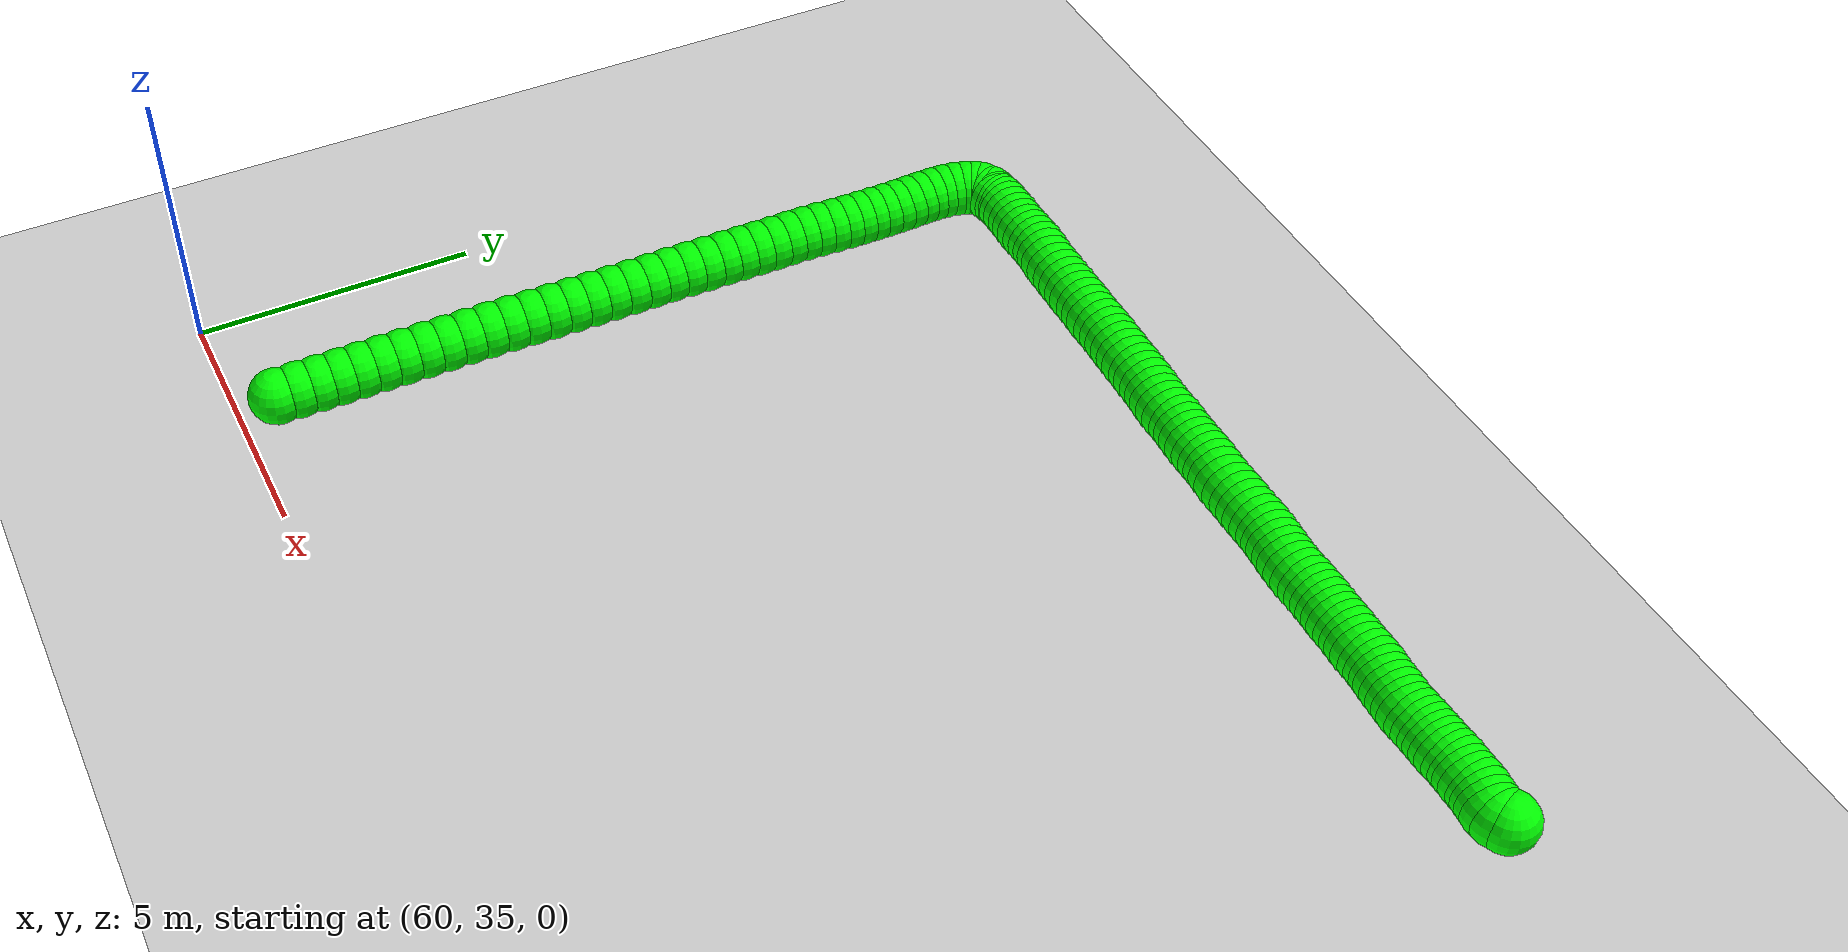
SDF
<sdf version="1.6">
 <world name="default">
  <include><uri>model://sun</uri></include>
  <include><uri>model://ground_plane</uri></include>
  <model name="marker_271">
   <static>true</static>
   <link name="link">
    <visual name="visual">
     <geometry><sphere><radius>0.5</radius></sphere></geometry>
     <material><ambient>0 1 0 1</ambient><diffuse>0 1 0 1</diffuse></material>
     <pose>79.09264280134074 49.093732123885516 0.5 0 0 0</pose>
    </visual>
   </link>
  </model>
  <model name="marker_272">
   <static>true</static>
   <link name="link">
    <visual name="visual">
     <geometry><sphere><radius>0.5</radius></sphere></geometry>
     <material><ambient>0 1 0 1</ambient><diffuse>0 1 0 1</diffuse></material>
     <pose>78.94742888653998 49.02631363896602 0.5 0 0 0</pose>
    </visual>
   </link>
  </model>
  <model name="marker_273">
   <static>true</static>
   <link name="link">
    <visual name="visual">
     <geometry><sphere><radius>0.5</radius></sphere></geometry>
     <material><ambient>0 1 0 1</ambient><diffuse>0 1 0 1</diffuse></material>
     <pose>78.79647075040774 49.01160415134155 0.5 0 0 0</pose>
    </visual>
   </link>
  </model>
  <model name="marker_274">
   <static>true</static>
   <link name="link">
    <visual name="visual">
     <geometry><sphere><radius>0.5</radius></sphere></geometry>
     <material><ambient>0 1 0 1</ambient><diffuse>0 1 0 1</diffuse></material>
     <pose>78.64206608152881 49.02794802647662 0.5 0 0 0</pose>
    </visual>
   </link>
  </model>
  <model name="marker_275">
   <static>true</static>
   <link name="link">
    <visual name="visual">
     <geometry><sphere><radius>0.5</radius></sphere></geometry>
     <material><ambient>0 1 0 1</ambient><diffuse>0 1 0 1</diffuse></material>
     <pose>78.48651256835747 49.04592628912231 0.5 0 0 0</pose>
    </visual>
   </link>
  </model>
  <model name="marker_276">
   <static>true</static>
   <link name="link">
    <visual name="visual">
     <geometry><sphere><radius>0.5</radius></sphere></geometry>
     <material><ambient>0 1 0 1</ambient><diffuse>0 1 0 1</diffuse></material>
     <pose>78.3380818896163 49.052872436055075 0.5 0 0 0</pose>
    </visual>
   </link>
  </model>
  <model name="marker_277">
   <static>true</static>
   <link name="link">
    <visual name="visual">
     <geometry><sphere><radius>0.5</radius></sphere></geometry>
     <material><ambient>0 1 0 1</ambient><diffuse>0 1 0 1</diffuse></material>
     <pose>78.1857451403854 49.04633488599814 0.5 0 0 0</pose>
    </visual>
   </link>
  </model>
  <model name="marker_278">
   <static>true</static>
   <link name="link">
    <visual name="visual">
     <geometry><sphere><radius>0.5</radius></sphere></geometry>
     <material><ambient>0 1 0 1</ambient><diffuse>0 1 0 1</diffuse></material>
     <pose>78.03547631083512 49.049603661026616 0.5 0 0 0</pose>
    </visual>
   </link>
  </model>
  <model name="marker_279">
   <static>true</static>
   <link name="link">
    <visual name="visual">
     <geometry><sphere><radius>0.5</radius></sphere></geometry>
     <material><ambient>0 1 0 1</ambient><diffuse>0 1 0 1</diffuse></material>
     <pose>77.88382886815353 49.05368962981401 0.5 0 0 0</pose>
    </visual>
   </link>
  </model>
  <model name="marker_280">
   <static>true</static>
   <link name="link">
    <visual name="visual">
     <geometry><sphere><radius>0.5</radius></sphere></geometry>
     <material><ambient>0 1 0 1</ambient><diffuse>0 1 0 1</diffuse></material>
     <pose>77.73930425990211 49.04347470785277 0.5 0 0 0</pose>
    </visual>
   </link>
  </model>
  <model name="marker_281">
   <static>true</static>
   <link name="link">
    <visual name="visual">
     <geometry><sphere><radius>0.5</radius></sphere></geometry>
     <material><ambient>0 1 0 1</ambient><diffuse>0 1 0 1</diffuse></material>
     <pose>77.59523918936114 49.03203399525677 0.5 0 0 0</pose>
    </visual>
   </link>
  </model>
  <model name="marker_282">
   <static>true</static>
   <link name="link">
    <visual name="visual">
     <geometry><sphere><radius>0.5</radius></sphere></geometry>
     <material><ambient>0 1 0 1</ambient><diffuse>0 1 0 1</diffuse></material>
     <pose>77.45186342540214 49.029991010870326 0.5 0 0 0</pose>
    </visual>
   </link>
  </model>
  <model name="marker_283">
   <static>true</static>
   <link name="link">
    <visual name="visual">
     <geometry><sphere><radius>0.5</radius></sphere></geometry>
     <material><ambient>0 1 0 1</ambient><diffuse>0 1 0 1</diffuse></material>
     <pose>77.30871743024937 49.027130832717695 0.5 0 0 0</pose>
    </visual>
   </link>
  </model>
  <model name="marker_284">
   <static>true</static>
   <link name="link">
    <visual name="visual">
     <geometry><sphere><radius>0.5</radius></sphere></geometry>
     <material><ambient>0 1 0 1</ambient><diffuse>0 1 0 1</diffuse></material>
     <pose>77.16603097283972 49.02467925144816 0.5 0 0 0</pose>
    </visual>
   </link>
  </model>
  <model name="marker_285">
   <static>true</static>
   <link name="link">
    <visual name="visual">
     <geometry><sphere><radius>0.5</radius></sphere></geometry>
     <material><ambient>0 1 0 1</ambient><diffuse>0 1 0 1</diffuse></material>
     <pose>77.01668121867768 49.015281523245854 0.5 0 0 0</pose>
    </visual>
   </link>
  </model>
  <model name="marker_286">
   <static>true</static>
   <link name="link">
    <visual name="visual">
     <geometry><sphere><radius>0.5</radius></sphere></geometry>
     <material><ambient>0 1 0 1</ambient><diffuse>0 1 0 1</diffuse></material>
     <pose>76.86641238912739 49.00792677943724 0.5 0 0 0</pose>
    </visual>
   </link>
  </model>
  <model name="marker_287">
   <static>true</static>
   <link name="link">
    <visual name="visual">
     <geometry><sphere><radius>0.5</radius></sphere></geometry>
     <material><ambient>0 1 0 1</ambient><diffuse>0 1 0 1</diffuse></material>
     <pose>76.71062910711717 48.99975484186971 0.5 0 0 0</pose>
    </visual>
   </link>
  </model>
  <model name="marker_288">
   <static>true</static>
   <link name="link">
    <visual name="visual">
     <geometry><sphere><radius>0.5</radius></sphere></geometry>
     <material><ambient>0 1 0 1</ambient><diffuse>0 1 0 1</diffuse></material>
     <pose>76.55530536278472 49.00751818256141 0.5 0 0 0</pose>
    </visual>
   </link>
  </model>
  <model name="marker_289">
   <static>true</static>
   <link name="link">
    <visual name="visual">
     <geometry><sphere><radius>0.5</radius></sphere></geometry>
     <material><ambient>0 1 0 1</ambient><diffuse>0 1 0 1</diffuse></material>
     <pose>76.39722439225494 49.015690120128944 0.5 0 0 0</pose>
    </visual>
   </link>
  </model>
  <model name="marker_290">
   <static>true</static>
   <link name="link">
    <visual name="visual">
     <geometry><sphere><radius>0.5</radius></sphere></geometry>
     <material><ambient>0 1 0 1</ambient><diffuse>0 1 0 1</diffuse></material>
     <pose>76.23408850694298 49.02427065457232 0.5 0 0 0</pose>
    </visual>
   </link>
  </model>
  <model name="marker_291">
   <static>true</static>
   <link name="link">
    <visual name="visual">
     <geometry><sphere><radius>0.5</radius></sphere></geometry>
     <material><ambient>0 1 0 1</ambient><diffuse>0 1 0 1</diffuse></material>
     <pose>76.06888470198304 49.0348941734094 0.5 0 0 0</pose>
    </visual>
   </link>
  </model>
  <model name="marker_292">
   <static>true</static>
   <link name="link">
    <visual name="visual">
     <geometry><sphere><radius>0.5</radius></sphere></geometry>
     <material><ambient>0 1 0 1</ambient><diffuse>0 1 0 1</diffuse></material>
     <pose>75.90689766096351 49.05164664542031 0.5 0 0 0</pose>
    </visual>
   </link>
  </model>
  <model name="marker_293">
   <static>true</static>
   <link name="link">
    <visual name="visual">
     <geometry><sphere><radius>0.5</radius></sphere></geometry>
     <material><ambient>0 1 0 1</ambient><diffuse>0 1 0 1</diffuse></material>
     <pose>75.74123431826048 49.05777559859415 0.5 0 0 0</pose>
    </visual>
   </link>
  </model>
  <model name="marker_294">
   <static>true</static>
   <link name="link">
    <visual name="visual">
     <geometry><sphere><radius>0.5</radius></sphere></geometry>
     <material><ambient>0 1 0 1</ambient><diffuse>0 1 0 1</diffuse></material>
     <pose>75.57465190016921 49.056549807959385 0.5 0 0 0</pose>
    </visual>
   </link>
  </model>
  <model name="marker_295">
   <static>true</static>
   <link name="link">
    <visual name="visual">
     <geometry><sphere><radius>0.5</radius></sphere></geometry>
     <material><ambient>0 1 0 1</ambient><diffuse>0 1 0 1</diffuse></material>
     <pose>75.40783971323906 49.05123804854448 0.5 0 0 0</pose>
    </visual>
   </link>
  </model>
  <model name="marker_296">
   <static>true</static>
   <link name="link">
    <visual name="visual">
     <geometry><sphere><radius>0.5</radius></sphere></geometry>
     <material><ambient>0 1 0 1</ambient><diffuse>0 1 0 1</diffuse></material>
     <pose>75.24010845088802 49.05859279235308 0.5 0 0 0</pose>
    </visual>
   </link>
  </model>
  <model name="marker_297">
   <static>true</static>
   <link name="link">
    <visual name="visual">
     <geometry><sphere><radius>0.5</radius></sphere></geometry>
     <material><ambient>0 1 0 1</ambient><diffuse>0 1 0 1</diffuse></material>
     <pose>75.07007950001746 49.06717332679646 0.5 0 0 0</pose>
    </visual>
   </link>
  </model>
  <model name="marker_298">
   <static>true</static>
   <link name="link">
    <visual name="visual">
     <geometry><sphere><radius>0.5</radius></sphere></geometry>
     <material><ambient>0 1 0 1</ambient><diffuse>0 1 0 1</diffuse></material>
     <pose>74.90418638847552 49.06676472992062 0.5 0 0 0</pose>
    </visual>
   </link>
  </model>
  <model name="marker_299">
   <static>true</static>
   <link name="link">
    <visual name="visual">
     <geometry><sphere><radius>0.5</radius></sphere></geometry>
     <material><ambient>0 1 0 1</ambient><diffuse>0 1 0 1</diffuse></material>
     <pose>74.73553605073626 49.06513034240276 0.5 0 0 0</pose>
    </visual>
   </link>
  </model>
  <model name="marker_300">
   <static>true</static>
   <link name="link">
    <visual name="visual">
     <geometry><sphere><radius>0.5</radius></sphere></geometry>
     <material><ambient>0 1 0 1</ambient><diffuse>0 1 0 1</diffuse></material>
     <pose>74.57285970313475 49.07044210182492 0.5 0 0 0</pose>
    </visual>
   </link>
  </model>
  <model name="marker_301">
   <static>true</static>
   <link name="link">
    <visual name="visual">
     <geometry><sphere><radius>0.5</radius></sphere></geometry>
     <material><ambient>0 1 0 1</ambient><diffuse>0 1 0 1</diffuse></material>
     <pose>74.40489867194482 49.076571054998766 0.5 0 0 0</pose>
    </visual>
   </link>
  </model>
  <model name="marker_302">
   <static>true</static>
   <link name="link">
    <visual name="visual">
     <geometry><sphere><radius>0.5</radius></sphere></geometry>
     <material><ambient>0 1 0 1</ambient><diffuse>0 1 0 1</diffuse></material>
     <pose>74.238775791564 49.076571054998766 0.5 0 0 0</pose>
    </visual>
   </link>
  </model>
  <model name="marker_303">
   <static>true</static>
   <link name="link">
    <visual name="visual">
     <geometry><sphere><radius>0.5</radius></sphere></geometry>
     <material><ambient>0 1 0 1</ambient><diffuse>0 1 0 1</diffuse></material>
     <pose>74.06851707182187 49.075345264363996 0.5 0 0 0</pose>
    </visual>
   </link>
  </model>
  <model name="marker_304">
   <static>true</static>
   <link name="link">
    <visual name="visual">
     <geometry><sphere><radius>0.5</radius></sphere></geometry>
     <material><ambient>0 1 0 1</ambient><diffuse>0 1 0 1</diffuse></material>
     <pose>73.89664997010954 49.071259295576596 0.5 0 0 0</pose>
    </visual>
   </link>
  </model>
  <model name="marker_305">
   <static>true</static>
   <link name="link">
    <visual name="visual">
     <geometry><sphere><radius>0.5</radius></sphere></geometry>
     <material><ambient>0 1 0 1</ambient><diffuse>0 1 0 1</diffuse></material>
     <pose>73.71972795368035 49.064721745526924 0.5 0 0 0</pose>
    </visual>
   </link>
  </model>
  <model name="marker_306">
   <static>true</static>
   <link name="link">
    <visual name="visual">
     <geometry><sphere><radius>0.5</radius></sphere></geometry>
     <material><ambient>0 1 0 1</ambient><diffuse>0 1 0 1</diffuse></material>
     <pose>73.534993796239 49.06635613303752 0.5 0 0 0</pose>
    </visual>
   </link>
  </model>
  <model name="marker_307">
   <static>true</static>
   <link name="link">
    <visual name="visual">
     <geometry><sphere><radius>0.5</radius></sphere></geometry>
     <material><ambient>0 1 0 1</ambient><diffuse>0 1 0 1</diffuse></material>
     <pose>73.35186802076784 49.074119473729226 0.5 0 0 0</pose>
    </visual>
   </link>
  </model>
  <model name="marker_308">
   <static>true</static>
   <link name="link">
    <visual name="visual">
     <geometry><sphere><radius>0.5</radius></sphere></geometry>
     <material><ambient>0 1 0 1</ambient><diffuse>0 1 0 1</diffuse></material>
     <pose>73.1703506272669 49.09087194574015 0.5 0 0 0</pose>
    </visual>
   </link>
  </model>
  <model name="marker_309">
   <static>true</static>
   <link name="link">
    <visual name="visual">
     <geometry><sphere><radius>0.5</radius></sphere></geometry>
     <material><ambient>0 1 0 1</ambient><diffuse>0 1 0 1</diffuse></material>
     <pose>72.98722485179574 49.10394704584675 0.5 0 0 0</pose>
    </visual>
   </link>
  </model>
  <model name="marker_310">
   <static>true</static>
   <link name="link">
    <visual name="visual">
     <geometry><sphere><radius>0.5</radius></sphere></geometry>
     <material><ambient>0 1 0 1</ambient><diffuse>0 1 0 1</diffuse></material>
     <pose>72.80272046322594 49.117839339705036 0.5 0 0 0</pose>
    </visual>
   </link>
  </model>
  <model name="marker_311">
   <static>true</static>
   <link name="link">
    <visual name="visual">
     <geometry><sphere><radius>0.5</radius></sphere></geometry>
     <material><ambient>0 1 0 1</ambient><diffuse>0 1 0 1</diffuse></material>
     <pose>72.6195946877548 49.123151099127206 0.5 0 0 0</pose>
    </visual>
   </link>
  </model>
  <model name="marker_312">
   <static>true</static>
   <link name="link">
    <visual name="visual">
     <geometry><sphere><radius>0.5</radius></sphere></geometry>
     <material><ambient>0 1 0 1</ambient><diffuse>0 1 0 1</diffuse></material>
     <pose>72.43003538440281 49.11988232409873 0.5 0 0 0</pose>
    </visual>
   </link>
  </model>
  <model name="marker_313">
   <static>true</static>
   <link name="link">
    <visual name="visual">
     <geometry><sphere><radius>0.5</radius></sphere></geometry>
     <material><ambient>0 1 0 1</ambient><diffuse>0 1 0 1</diffuse></material>
     <pose>72.23794862369239 49.11661354907027 0.5 0 0 0</pose>
    </visual>
   </link>
  </model>
  <model name="marker_314">
   <static>true</static>
   <link name="link">
    <visual name="visual">
     <geometry><sphere><radius>0.5</radius></sphere></geometry>
     <material><ambient>0 1 0 1</ambient><diffuse>0 1 0 1</diffuse></material>
     <pose>72.04126648591024 49.11865653346397 0.5 0 0 0</pose>
    </visual>
   </link>
  </model>
  <model name="marker_315">
   <static>true</static>
   <link name="link">
    <visual name="visual">
     <geometry><sphere><radius>0.5</radius></sphere></geometry>
     <material><ambient>0 1 0 1</ambient><diffuse>0 1 0 1</diffuse></material>
     <pose>71.8374615136979 49.1174307428292 0.5 0 0 0</pose>
    </visual>
   </link>
  </model>
  <model name="marker_316">
   <static>true</static>
   <link name="link">
    <visual name="visual">
     <geometry><sphere><radius>0.5</radius></sphere></geometry>
     <material><ambient>0 1 0 1</ambient><diffuse>0 1 0 1</diffuse></material>
     <pose>71.63181839070913 49.11293617716596 0.5 0 0 0</pose>
    </visual>
   </link>
  </model>
  <model name="marker_317">
   <static>true</static>
   <link name="link">
    <visual name="visual">
     <geometry><sphere><radius>0.5</radius></sphere></geometry>
     <material><ambient>0 1 0 1</ambient><diffuse>0 1 0 1</diffuse></material>
     <pose>71.41974173980685 49.11334477404906 0.5 0 0 0</pose>
    </visual>
   </link>
  </model>
  <model name="marker_318">
   <static>true</static>
   <link name="link">
    <visual name="visual">
     <geometry><sphere><radius>0.5</radius></sphere></geometry>
     <material><ambient>0 1 0 1</ambient><diffuse>0 1 0 1</diffuse></material>
     <pose>71.21134139055545 49.124785486637805 0.5 0 0 0</pose>
    </visual>
   </link>
  </model>
  <model name="marker_319">
   <static>true</static>
   <link name="link">
    <visual name="visual">
     <geometry><sphere><radius>0.5</radius></sphere></geometry>
     <material><ambient>0 1 0 1</ambient><diffuse>0 1 0 1</diffuse></material>
     <pose>71.01396994622395 49.13581760235072 0.5 0 0 0</pose>
    </visual>
   </link>
  </model>
  <model name="marker_320">
   <static>true</static>
   <link name="link">
    <visual name="visual">
     <geometry><sphere><radius>0.5</radius></sphere></geometry>
     <material><ambient>0 1 0 1</ambient><diffuse>0 1 0 1</diffuse></material>
     <pose>70.8230320297733 49.13786058674442 0.5 0 0 0</pose>
    </visual>
   </link>
  </model>
  <model name="marker_321">
   <static>true</static>
   <link name="link">
    <visual name="visual">
     <geometry><sphere><radius>0.5</radius></sphere></geometry>
     <material><ambient>0 1 0 1</ambient><diffuse>0 1 0 1</diffuse></material>
     <pose>70.63531087726308 49.13459181171595 0.5 0 0 0</pose>
    </visual>
   </link>
  </model>
  <model name="marker_322">
   <static>true</static>
   <link name="link">
    <visual name="visual">
     <geometry><sphere><radius>0.5</radius></sphere></geometry>
     <material><ambient>0 1 0 1</ambient><diffuse>0 1 0 1</diffuse></material>
     <pose>70.44896833785151 49.13459181171595 0.5 0 0 0</pose>
    </visual>
   </link>
  </model>
  <model name="marker_323">
   <static>true</static>
   <link name="link">
    <visual name="visual">
     <geometry><sphere><radius>0.5</radius></sphere></geometry>
     <material><ambient>0 1 0 1</ambient><diffuse>0 1 0 1</diffuse></material>
     <pose>70.25504342629934 49.14194655553182 0.5 0 0 0</pose>
    </visual>
   </link>
  </model>
  <model name="marker_324">
   <static>true</static>
   <link name="link">
    <visual name="visual">
     <geometry><sphere><radius>0.5</radius></sphere></geometry>
     <material><ambient>0 1 0 1</ambient><diffuse>0 1 0 1</diffuse></material>
     <pose>70.06042920819783 49.15338726812056 0.5 0 0 0</pose>
    </visual>
   </link>
  </model>
  <model name="marker_325">
   <static>true</static>
   <link name="link">
    <visual name="visual">
     <geometry><sphere><radius>0.5</radius></sphere></geometry>
     <material><ambient>0 1 0 1</ambient><diffuse>0 1 0 1</diffuse></material>
     <pose>69.86765314093807 49.16033341505334 0.5 0 0 0</pose>
    </visual>
   </link>
  </model>
  <model name="marker_326">
   <static>true</static>
   <link name="link">
    <visual name="visual">
     <geometry><sphere><radius>0.5</radius></sphere></geometry>
     <material><ambient>0 1 0 1</ambient><diffuse>0 1 0 1</diffuse></material>
     <pose>69.67280915399768 49.155021655631174 0.5 0 0 0</pose>
    </visual>
   </link>
  </model>
  <model name="marker_327">
   <static>true</static>
   <link name="link">
    <visual name="visual">
     <geometry><sphere><radius>0.5</radius></sphere></geometry>
     <material><ambient>0 1 0 1</ambient><diffuse>0 1 0 1</diffuse></material>
     <pose>69.47589724737662 49.1595162212944 0.5 0 0 0</pose>
    </visual>
   </link>
  </model>
  <model name="marker_328">
   <static>true</static>
   <link name="link">
    <visual name="visual">
     <geometry><sphere><radius>0.5</radius></sphere></geometry>
     <material><ambient>0 1 0 1</ambient><diffuse>0 1 0 1</diffuse></material>
     <pose>69.28013418501534 49.17013974013148 0.5 0 0 0</pose>
    </visual>
   </link>
  </model>
  <model name="marker_329">
   <static>true</static>
   <link name="link">
    <visual name="visual">
     <geometry><sphere><radius>0.5</radius></sphere></geometry>
     <material><ambient>0 1 0 1</ambient><diffuse>0 1 0 1</diffuse></material>
     <pose>69.07586967509258 49.18689221214239 0.5 0 0 0</pose>
    </visual>
   </link>
  </model>
  <model name="marker_330">
   <static>true</static>
   <link name="link">
    <visual name="visual">
     <geometry><sphere><radius>0.5</radius></sphere></geometry>
     <material><ambient>0 1 0 1</ambient><diffuse>0 1 0 1</diffuse></material>
     <pose>68.87367308488311 49.198332924738395 0.5 0 0 0</pose>
    </visual>
   </link>
  </model>
  <model name="marker_331">
   <static>true</static>
   <link name="link">
    <visual name="visual">
     <geometry><sphere><radius>0.5</radius></sphere></geometry>
     <material><ambient>0 1 0 1</ambient><diffuse>0 1 0 1</diffuse></material>
     <pose>68.67193603235144 49.20364468415331 0.5 0 0 0</pose>
    </visual>
   </link>
  </model>
  <model name="marker_332">
   <static>true</static>
   <link name="link">
    <visual name="visual">
     <geometry><sphere><radius>0.5</radius></sphere></geometry>
     <material><ambient>0 1 0 1</ambient><diffuse>0 1 0 1</diffuse></material>
     <pose>68.46905013555997 49.21426820299038 0.5 0 0 0</pose>
    </visual>
   </link>
  </model>
  <model name="marker_333">
   <static>true</static>
   <link name="link">
    <visual name="visual">
     <geometry><sphere><radius>0.5</radius></sphere></geometry>
     <material><ambient>0 1 0 1</ambient><diffuse>0 1 0 1</diffuse></material>
     <pose>68.261109324019 49.21304241235561 0.5 0 0 0</pose>
    </visual>
   </link>
  </model>
  <model name="marker_334">
   <static>true</static>
   <link name="link">
    <visual name="visual">
     <geometry><sphere><radius>0.5</radius></sphere></geometry>
     <material><ambient>0 1 0 1</ambient><diffuse>0 1 0 1</diffuse></material>
     <pose>68.05316851247804 49.22284873743376 0.5 0 0 0</pose>
    </visual>
   </link>
  </model>
  <model name="marker_335">
   <static>true</static>
   <link name="link">
    <visual name="visual">
     <geometry><sphere><radius>0.5</radius></sphere></geometry>
     <material><ambient>0 1 0 1</ambient><diffuse>0 1 0 1</diffuse></material>
     <pose>67.84729562061771 49.228569093731764 0.5 0 0 0</pose>
    </visual>
   </link>
  </model>
  <model name="marker_336">
   <static>true</static>
   <link name="link">
    <visual name="visual">
     <geometry><sphere><radius>0.5</radius></sphere></geometry>
     <material><ambient>0 1 0 1</ambient><diffuse>0 1 0 1</diffuse></material>
     <pose>67.64050365333651 49.236741031299296 0.5 0 0 0</pose>
    </visual>
   </link>
  </model>
  <model name="marker_337">
   <static>true</static>
   <link name="link">
    <visual name="visual">
     <geometry><sphere><radius>0.5</radius></sphere></geometry>
     <material><ambient>0 1 0 1</ambient><diffuse>0 1 0 1</diffuse></material>
     <pose>67.42957584669401 49.2424613875973 0.5 0 0 0</pose>
    </visual>
   </link>
  </model>
  <model name="marker_338">
   <static>true</static>
   <link name="link">
    <visual name="visual">
     <geometry><sphere><radius>0.5</radius></sphere></geometry>
     <material><ambient>0 1 0 1</ambient><diffuse>0 1 0 1</diffuse></material>
     <pose>67.21726942695284 49.244504371983744 0.5 0 0 0</pose>
    </visual>
   </link>
  </model>
  <model name="marker_339">
   <static>true</static>
   <link name="link">
    <visual name="visual">
     <geometry><sphere><radius>0.5</radius></sphere></geometry>
     <material><ambient>0 1 0 1</ambient><diffuse>0 1 0 1</diffuse></material>
     <pose>67.00496300721169 49.24123559696253 0.5 0 0 0</pose>
    </visual>
   </link>
  </model>
  <model name="marker_340">
   <static>true</static>
   <link name="link">
    <visual name="visual">
     <geometry><sphere><radius>0.5</radius></sphere></geometry>
     <material><ambient>0 1 0 1</ambient><diffuse>0 1 0 1</diffuse></material>
     <pose>66.79357566289139 49.251859115799604 0.5 0 0 0</pose>
    </visual>
   </link>
  </model>
  <model name="marker_341">
   <static>true</static>
   <link name="link">
    <visual name="visual">
     <geometry><sphere><radius>0.5</radius></sphere></geometry>
     <material><ambient>0 1 0 1</ambient><diffuse>0 1 0 1</diffuse></material>
     <pose>66.58448600705799 49.25757947209035 0.5 0 0 0</pose>
    </visual>
   </link>
  </model>
  <model name="marker_342">
   <static>true</static>
   <link name="link">
    <visual name="visual">
     <geometry><sphere><radius>0.5</radius></sphere></geometry>
     <material><ambient>0 1 0 1</ambient><diffuse>0 1 0 1</diffuse></material>
     <pose>66.37585588896769 49.25553648770391 0.5 0 0 0</pose>
    </visual>
   </link>
  </model>
  <model name="marker_343">
   <static>true</static>
   <link name="link">
    <visual name="visual">
     <geometry><sphere><radius>0.5</radius></sphere></geometry>
     <material><ambient>0 1 0 1</ambient><diffuse>0 1 0 1</diffuse></material>
     <pose>66.1681448462656 49.26370842526419 0.5 0 0 0</pose>
    </visual>
   </link>
  </model>
  <model name="marker_344">
   <static>true</static>
   <link name="link">
    <visual name="visual">
     <geometry><sphere><radius>0.5</radius></sphere></geometry>
     <material><ambient>0 1 0 1</ambient><diffuse>0 1 0 1</diffuse></material>
     <pose>65.95721703965577 49.26656860341682 0.5 0 0 0</pose>
    </visual>
   </link>
  </model>
  <model name="marker_345">
   <static>true</static>
   <link name="link">
    <visual name="visual">
     <geometry><sphere><radius>0.5</radius></sphere></geometry>
     <material><ambient>0 1 0 1</ambient><diffuse>0 1 0 1</diffuse></material>
     <pose>65.74743807730569 49.27106316908006 0.5 0 0 0</pose>
    </visual>
   </link>
  </model>
  <model name="marker_346">
   <static>true</static>
   <link name="link">
    <visual name="visual">
     <geometry><sphere><radius>0.5</radius></sphere></geometry>
     <material><ambient>0 1 0 1</ambient><diffuse>0 1 0 1</diffuse></material>
     <pose>65.53076604936435 49.2751491378602 0.5 0 0 0</pose>
    </visual>
   </link>
  </model>
  <model name="marker_347">
   <static>true</static>
   <link name="link">
    <visual name="visual">
     <geometry><sphere><radius>0.5</radius></sphere></geometry>
     <material><ambient>0 1 0 1</ambient><diffuse>0 1 0 1</diffuse></material>
     <pose>65.3129451771632 49.285772656697276 0.5 0 0 0</pose>
    </visual>
   </link>
  </model>
  <model name="marker_348">
   <static>true</static>
   <link name="link">
    <visual name="visual">
     <geometry><sphere><radius>0.5</radius></sphere></geometry>
     <material><ambient>0 1 0 1</ambient><diffuse>0 1 0 1</diffuse></material>
     <pose>65.09857083774139 49.3078368881231 0.5 0 0 0</pose>
    </visual>
   </link>
  </model>
  <model name="marker_349">
   <static>true</static>
   <link name="link">
    <visual name="visual">
     <geometry><sphere><radius>0.5</radius></sphere></geometry>
     <material><ambient>0 1 0 1</ambient><diffuse>0 1 0 1</diffuse></material>
     <pose>64.89384679014084 49.31846040696017 0.5 0 0 0</pose>
    </visual>
   </link>
  </model>
  <model name="marker_350">
   <static>true</static>
   <link name="link">
    <visual name="visual">
     <geometry><sphere><radius>0.5</radius></sphere></geometry>
     <material><ambient>0 1 0 1</ambient><diffuse>0 1 0 1</diffuse></material>
     <pose>64.70451725562776 49.31641742257373 0.5 0 0 0</pose>
    </visual>
   </link>
  </model>
  <model name="marker_351">
   <static>true</static>
   <link name="link">
    <visual name="visual">
     <geometry><sphere><radius>0.5</radius></sphere></geometry>
     <material><ambient>0 1 0 1</ambient><diffuse>0 1 0 1</diffuse></material>
     <pose>64.52208078673858 49.309879872516795 0.5 0 0 0</pose>
    </visual>
   </link>
  </model>
  <model name="marker_352">
   <static>true</static>
   <link name="link">
    <visual name="visual">
     <geometry><sphere><radius>0.5</radius></sphere></geometry>
     <material><ambient>0 1 0 1</ambient><diffuse>0 1 0 1</diffuse></material>
     <pose>64.33987408665567 49.30579390373666 0.5 0 0 0</pose>
    </visual>
   </link>
  </model>
  <model name="marker_353">
   <static>true</static>
   <link name="link">
    <visual name="visual">
     <geometry><sphere><radius>0.5</radius></sphere></geometry>
     <material><ambient>0 1 0 1</ambient><diffuse>0 1 0 1</diffuse></material>
     <pose>64.1578971554443 49.31069706627573 0.5 0 0 0</pose>
    </visual>
   </link>
  </model>
  <model name="marker_354">
   <static>true</static>
   <link name="link">
    <visual name="visual">
     <geometry><sphere><radius>0.5</radius></sphere></geometry>
     <material><ambient>0 1 0 1</ambient><diffuse>0 1 0 1</diffuse></material>
     <pose>63.97201415374316 49.3176432132085 0.5 0 0 0</pose>
    </visual>
   </link>
  </model>
  <model name="marker_355">
   <static>true</static>
   <link name="link">
    <visual name="visual">
     <geometry><sphere><radius>0.5</radius></sphere></geometry>
     <material><ambient>0 1 0 1</ambient><diffuse>0 1 0 1</diffuse></material>
     <pose>63.778548779934084 49.316826019449564 0.5 0 0 0</pose>
    </visual>
   </link>
  </model>
  <model name="marker_356">
   <static>true</static>
   <link name="link">
    <visual name="visual">
     <geometry><sphere><radius>0.5</radius></sphere></geometry>
     <material><ambient>0 1 0 1</ambient><diffuse>0 1 0 1</diffuse></material>
     <pose>63.59611231101226 49.31600882569063 0.5 0 0 0</pose>
    </visual>
   </link>
  </model>
  <model name="marker_357">
   <static>true</static>
   <link name="link">
    <visual name="visual">
     <geometry><sphere><radius>0.5</radius></sphere></geometry>
     <material><ambient>0 1 0 1</ambient><diffuse>0 1 0 1</diffuse></material>
     <pose>63.446532788011325 49.30538530685356 0.5 0 0 0</pose>
    </visual>
   </link>
  </model>
  <model name="marker_358">
   <static>true</static>
   <link name="link">
    <visual name="visual">
     <geometry><sphere><radius>0.5</radius></sphere></geometry>
     <material><ambient>0 1 0 1</ambient><diffuse>0 1 0 1</diffuse></material>
     <pose>63.33900096504208 49.280460897275105 0.5 0 0 0</pose>
    </visual>
   </link>
  </model>
  <model name="marker_359">
   <static>true</static>
   <link name="link">
    <visual name="visual">
     <geometry><sphere><radius>0.5</radius></sphere></geometry>
     <material><ambient>0 1 0 1</ambient><diffuse>0 1 0 1</diffuse></material>
     <pose>63.26823215845081 49.26534281278205 0.5 0 0 0</pose>
    </visual>
   </link>
  </model>
  <model name="marker_360">
   <static>true</static>
   <link name="link">
    <visual name="visual">
     <geometry><sphere><radius>0.5</radius></sphere></geometry>
     <material><ambient>0 1 0 1</ambient><diffuse>0 1 0 1</diffuse></material>
     <pose>63.21998069940982 49.26493421589896 0.5 0 0 0</pose>
    </visual>
   </link>
  </model>
  <model name="marker_361">
   <static>true</static>
   <link name="link">
    <visual name="visual">
     <geometry><sphere><radius>0.5</radius></sphere></geometry>
     <material><ambient>0 1 0 1</ambient><diffuse>0 1 0 1</diffuse></material>
     <pose>63.15771334038004 49.263299828388355 0.5 0 0 0</pose>
    </visual>
   </link>
  </model>
  <model name="marker_362">
   <static>true</static>
   <link name="link">
    <visual name="visual">
     <geometry><sphere><radius>0.5</radius></sphere></geometry>
     <material><ambient>0 1 0 1</ambient><diffuse>0 1 0 1</diffuse></material>
     <pose>63.09268875512027 49.217945574894685 0.5 0 0 0</pose>
    </visual>
   </link>
  </model>
  <model name="marker_363">
   <static>true</static>
   <link name="link">
    <visual name="visual">
     <geometry><sphere><radius>0.5</radius></sphere></geometry>
     <material><ambient>0 1 0 1</ambient><diffuse>0 1 0 1</diffuse></material>
     <pose>62.99664537474874 49.17463430579471 0.5 0 0 0</pose>
    </visual>
   </link>
  </model>
  <model name="marker_364">
   <static>true</static>
   <link name="link">
    <visual name="visual">
     <geometry><sphere><radius>0.5</radius></sphere></geometry>
     <material><ambient>0 1 0 1</ambient><diffuse>0 1 0 1</diffuse></material>
     <pose>62.910022517359565 49.07452807060507 0.5 0 0 0</pose>
    </visual>
   </link>
  </model>
  <model name="marker_365">
   <static>true</static>
   <link name="link">
    <visual name="visual">
     <geometry><sphere><radius>0.5</radius></sphere></geometry>
     <material><ambient>0 1 0 1</ambient><diffuse>0 1 0 1</diffuse></material>
     <pose>62.835807177988976 48.92212143498897 0.5 0 0 0</pose>
    </visual>
   </link>
  </model>
  <model name="marker_366">
   <static>true</static>
   <link name="link">
    <visual name="visual">
     <geometry><sphere><radius>0.5</radius></sphere></geometry>
     <material><ambient>0 1 0 1</ambient><diffuse>0 1 0 1</diffuse></material>
     <pose>62.783190110747796 48.7251777396454 0.5 0 0 0</pose>
    </visual>
   </link>
  </model>
  <model name="marker_367">
   <static>true</static>
   <link name="link">
    <visual name="visual">
     <geometry><sphere><radius>0.5</radius></sphere></geometry>
     <material><ambient>0 1 0 1</ambient><diffuse>0 1 0 1</diffuse></material>
     <pose>62.75171177795824 48.50616981286149 0.5 0 0 0</pose>
    </visual>
   </link>
  </model>
  <model name="marker_368">
   <static>true</static>
   <link name="link">
    <visual name="visual">
     <geometry><sphere><radius>0.5</radius></sphere></geometry>
     <material><ambient>0 1 0 1</ambient><diffuse>0 1 0 1</diffuse></material>
     <pose>62.74366986810719 48.272452398460366 0.5 0 0 0</pose>
    </visual>
   </link>
  </model>
  <model name="marker_369">
   <static>true</static>
   <link name="link">
    <visual name="visual">
     <geometry><sphere><radius>0.5</radius></sphere></geometry>
     <material><ambient>0 1 0 1</ambient><diffuse>0 1 0 1</diffuse></material>
     <pose>62.74826524514627 48.02647707771157 0.5 0 0 0</pose>
    </visual>
   </link>
  </model>
  <model name="marker_370">
   <static>true</static>
   <link name="link">
    <visual name="visual">
     <geometry><sphere><radius>0.5</radius></sphere></geometry>
     <material><ambient>0 1 0 1</ambient><diffuse>0 1 0 1</diffuse></material>
     <pose>62.759064381227304 47.77968456321109 0.5 0 0 0</pose>
    </visual>
   </link>
  </model>
  <model name="marker_371">
   <static>true</static>
   <link name="link">
    <visual name="visual">
     <geometry><sphere><radius>0.5</radius></sphere></geometry>
     <material><ambient>0 1 0 1</ambient><diffuse>0 1 0 1</diffuse></material>
     <pose>62.7694039795979 47.523494320501044 0.5 0 0 0</pose>
    </visual>
   </link>
  </model>
  <model name="marker_372">
   <static>true</static>
   <link name="link">
    <visual name="visual">
     <geometry><sphere><radius>0.5</radius></sphere></geometry>
     <material><ambient>0 1 0 1</ambient><diffuse>0 1 0 1</diffuse></material>
     <pose>62.774229125508526 47.27261583721317 0.5 0 0 0</pose>
    </visual>
   </link>
  </model>
  <model name="marker_373">
   <static>true</static>
   <link name="link">
    <visual name="visual">
     <geometry><sphere><radius>0.5</radius></sphere></geometry>
     <material><ambient>0 1 0 1</ambient><diffuse>0 1 0 1</diffuse></material>
     <pose>62.77262074353832 47.01928577265576 0.5 0 0 0</pose>
    </visual>
   </link>
  </model>
  <model name="marker_374">
   <static>true</static>
   <link name="link">
    <visual name="visual">
     <geometry><sphere><radius>0.5</radius></sphere></geometry>
     <material><ambient>0 1 0 1</ambient><diffuse>0 1 0 1</diffuse></material>
     <pose>62.77055282385767 46.76350412682881 0.5 0 0 0</pose>
    </visual>
   </link>
  </model>
  <model name="marker_375">
   <static>true</static>
   <link name="link">
    <visual name="visual">
     <geometry><sphere><radius>0.5</radius></sphere></geometry>
     <material><ambient>0 1 0 1</ambient><diffuse>0 1 0 1</diffuse></material>
     <pose>62.766187215657474 46.4987333496754 0.5 0 0 0</pose>
    </visual>
   </link>
  </model>
  <model name="marker_376">
   <static>true</static>
   <link name="link">
    <visual name="visual">
     <geometry><sphere><radius>0.5</radius></sphere></geometry>
     <material><ambient>0 1 0 1</ambient><diffuse>0 1 0 1</diffuse></material>
     <pose>62.757226230418205 46.220887472422625 0.5 0 0 0</pose>
    </visual>
   </link>
  </model>
  <model name="marker_377">
   <static>true</static>
   <link name="link">
    <visual name="visual">
     <geometry><sphere><radius>0.5</radius></sphere></geometry>
     <material><ambient>0 1 0 1</ambient><diffuse>0 1 0 1</diffuse></material>
     <pose>62.738155415647235 45.9373212388646 0.5 0 0 0</pose>
    </visual>
   </link>
  </model>
  <model name="marker_378">
   <static>true</static>
   <link name="link">
    <visual name="visual">
     <geometry><sphere><radius>0.5</radius></sphere></geometry>
     <material><ambient>0 1 0 1</ambient><diffuse>0 1 0 1</diffuse></material>
     <pose>62.726207435306435 45.636185339543985 0.5 0 0 0</pose>
    </visual>
   </link>
  </model>
  <model name="marker_379">
   <static>true</static>
   <link name="link">
    <visual name="visual">
     <geometry><sphere><radius>0.5</radius></sphere></geometry>
     <material><ambient>0 1 0 1</ambient><diffuse>0 1 0 1</diffuse></material>
     <pose>62.72299067139866 45.3317806651949 0.5 0 0 0</pose>
    </visual>
   </link>
  </model>
  <model name="marker_380">
   <static>true</static>
   <link name="link">
    <visual name="visual">
     <geometry><sphere><radius>0.5</radius></sphere></geometry>
     <material><ambient>0 1 0 1</ambient><diffuse>0 1 0 1</diffuse></material>
     <pose>62.72965396811839 45.01307510010443 0.5 0 0 0</pose>
    </visual>
   </link>
  </model>
  <model name="marker_381">
   <static>true</static>
   <link name="link">
    <visual name="visual">
     <geometry><sphere><radius>0.5</radius></sphere></geometry>
     <material><ambient>0 1 0 1</ambient><diffuse>0 1 0 1</diffuse></material>
     <pose>62.72919443040795 44.689466372474904 0.5 0 0 0</pose>
    </visual>
   </link>
  </model>
  <model name="marker_382">
   <static>true</static>
   <link name="link">
    <visual name="visual">
     <geometry><sphere><radius>0.5</radius></sphere></geometry>
     <material><ambient>0 1 0 1</ambient><diffuse>0 1 0 1</diffuse></material>
     <pose>62.724139515658436 44.35891149791985 0.5 0 0 0</pose>
    </visual>
   </link>
  </model>
  <model name="marker_383">
   <static>true</static>
   <link name="link">
    <visual name="visual">
     <geometry><sphere><radius>0.5</radius></sphere></geometry>
     <material><ambient>0 1 0 1</ambient><diffuse>0 1 0 1</diffuse></material>
     <pose>62.718854832037366 44.02753942959861 0.5 0 0 0</pose>
    </visual>
   </link>
  </model>
  <model name="marker_384">
   <static>true</static>
   <link name="link">
    <visual name="visual">
     <geometry><sphere><radius>0.5</radius></sphere></geometry>
     <material><ambient>0 1 0 1</ambient><diffuse>0 1 0 1</diffuse></material>
     <pose>62.719544138586706 43.67573751736216 0.5 0 0 0</pose>
    </visual>
   </link>
  </model>
  <model name="marker_385">
   <static>true</static>
   <link name="link">
    <visual name="visual">
     <geometry><sphere><radius>0.5</radius></sphere></geometry>
     <material><ambient>0 1 0 1</ambient><diffuse>0 1 0 1</diffuse></material>
     <pose>62.714029686126736 43.32025823322866 0.5 0 0 0</pose>
    </visual>
   </link>
  </model>
  <model name="marker_386">
   <static>true</static>
   <link name="link">
    <visual name="visual">
     <geometry><sphere><radius>0.5</radius></sphere></geometry>
     <material><ambient>0 1 0 1</ambient><diffuse>0 1 0 1</diffuse></material>
     <pose>62.70874500253832 42.961918770942525 0.5 0 0 0</pose>
    </visual>
   </link>
  </model>
  <model name="marker_387">
   <static>true</static>
   <link name="link">
    <visual name="visual">
     <geometry><sphere><radius>0.5</radius></sphere></geometry>
     <material><ambient>0 1 0 1</ambient><diffuse>0 1 0 1</diffuse></material>
     <pose>62.7158678369685 42.59418158045409 0.5 0 0 0</pose>
    </visual>
   </link>
  </model>
  <model name="marker_388">
   <static>true</static>
   <link name="link">
    <visual name="visual">
     <geometry><sphere><radius>0.5</radius></sphere></geometry>
     <material><ambient>0 1 0 1</ambient><diffuse>0 1 0 1</diffuse></material>
     <pose>62.718854832037366 42.21827245239812 0.5 0 0 0</pose>
    </visual>
   </link>
  </model>
  <model name="marker_389">
   <static>true</static>
   <link name="link">
    <visual name="visual">
     <geometry><sphere><radius>0.5</radius></sphere></geometry>
     <material><ambient>0 1 0 1</ambient><diffuse>0 1 0 1</diffuse></material>
     <pose>62.71770598777759 41.841546130590466 0.5 0 0 0</pose>
    </visual>
   </link>
  </model>
  <model name="marker_390">
   <static>true</static>
   <link name="link">
    <visual name="visual">
     <geometry><sphere><radius>0.5</radius></sphere></geometry>
     <material><ambient>0 1 0 1</ambient><diffuse>0 1 0 1</diffuse></material>
     <pose>62.71517853038651 41.46155103374709 0.5 0 0 0</pose>
    </visual>
   </link>
  </model>
  <model name="marker_391">
   <static>true</static>
   <link name="link">
    <visual name="visual">
     <geometry><sphere><radius>0.5</radius></sphere></geometry>
     <material><ambient>0 1 0 1</ambient><diffuse>0 1 0 1</diffuse></material>
     <pose>62.7115022287683 41.08114734003514 0.5 0 0 0</pose>
    </visual>
   </link>
  </model>
  <model name="marker_392">
   <static>true</static>
   <link name="link">
    <visual name="visual">
     <geometry><sphere><radius>0.5</radius></sphere></geometry>
     <material><ambient>0 1 0 1</ambient><diffuse>0 1 0 1</diffuse></material>
     <pose>62.70782592711745 40.69706627441162 0.5 0 0 0</pose>
    </visual>
   </link>
  </model>
  <model name="marker_393">
   <static>true</static>
   <link name="link">
    <visual name="visual">
     <geometry><sphere><radius>0.5</radius></sphere></geometry>
     <material><ambient>0 1 0 1</ambient><diffuse>0 1 0 1</diffuse></material>
     <pose>62.70024355497683 40.309716433766894 0.5 0 0 0</pose>
    </visual>
   </link>
  </model>
  <model name="marker_394">
   <static>true</static>
   <link name="link">
    <visual name="visual">
     <geometry><sphere><radius>0.5</radius></sphere></geometry>
     <material><ambient>0 1 0 1</ambient><diffuse>0 1 0 1</diffuse></material>
     <pose>62.692431413997326 39.9174634305831 0.5 0 0 0</pose>
    </visual>
   </link>
  </model>
  <model name="marker_395">
   <static>true</static>
   <link name="link">
    <visual name="visual">
     <geometry><sphere><radius>0.5</radius></sphere></geometry>
     <material><ambient>0 1 0 1</ambient><diffuse>0 1 0 1</diffuse></material>
     <pose>62.688065805797144 39.522758846122514 0.5 0 0 0</pose>
    </visual>
   </link>
  </model>
  <model name="marker_396">
   <static>true</static>
   <link name="link">
    <visual name="visual">
     <geometry><sphere><radius>0.5</radius></sphere></geometry>
     <material><ambient>0 1 0 1</ambient><diffuse>0 1 0 1</diffuse></material>
     <pose>62.68622765498804 39.12315109912285 0.5 0 0 0</pose>
    </visual>
   </link>
  </model>
  <model name="marker_397">
   <static>true</static>
   <link name="link">
    <visual name="visual">
     <geometry><sphere><radius>0.5</radius></sphere></geometry>
     <material><ambient>0 1 0 1</ambient><diffuse>0 1 0 1</diffuse></material>
     <pose>62.69197187628689 38.725586336524145 0.5 0 0 0</pose>
    </visual>
   </link>
  </model>
  <model name="marker_398">
   <static>true</static>
   <link name="link">
    <visual name="visual">
     <geometry><sphere><radius>0.5</radius></sphere></geometry>
     <material><ambient>0 1 0 1</ambient><diffuse>0 1 0 1</diffuse></material>
     <pose>62.693810027096 38.33455912396786 0.5 0 0 0</pose>
    </visual>
   </link>
  </model>
  <model name="marker_399">
   <static>true</static>
   <link name="link">
    <visual name="visual">
     <geometry><sphere><radius>0.5</radius></sphere></geometry>
     <material><ambient>0 1 0 1</ambient><diffuse>0 1 0 1</diffuse></material>
     <pose>62.691742107448 37.93944594263144 0.5 0 0 0</pose>
    </visual>
   </link>
  </model>
  <model name="marker_400">
   <static>true</static>
   <link name="link">
    <visual name="visual">
     <geometry><sphere><radius>0.5</radius></sphere></geometry>
     <material><ambient>0 1 0 1</ambient><diffuse>0 1 0 1</diffuse></material>
     <pose>62.69082303202712 37.54964452071717 0.5 0 0 0</pose>
    </visual>
   </link>
  </model>
  <model name="marker_401">
   <static>true</static>
   <link name="link">
    <visual name="visual">
     <geometry><sphere><radius>0.5</radius></sphere></geometry>
     <material><ambient>0 1 0 1</ambient><diffuse>0 1 0 1</diffuse></material>
     <pose>62.694958871388415 37.16433766445889 0.5 0 0 0</pose>
    </visual>
   </link>
  </model>
  <model name="marker_402">
   <static>true</static>
   <link name="link">
    <visual name="visual">
     <geometry><sphere><radius>0.5</radius></sphere></geometry>
     <material><ambient>0 1 0 1</ambient><diffuse>0 1 0 1</diffuse></material>
     <pose>62.69679702219753 36.785159761381706 0.5 0 0 0</pose>
    </visual>
   </link>
  </model>
  <model name="marker_403">
   <static>true</static>
   <link name="link">
    <visual name="visual">
     <geometry><sphere><radius>0.5</radius></sphere></geometry>
     <material><ambient>0 1 0 1</ambient><diffuse>0 1 0 1</diffuse></material>
     <pose>62.697026791036414 36.40843343956679 0.5 0 0 0</pose>
    </visual>
   </link>
  </model>
  <model name="marker_404">
   <static>true</static>
   <link name="link">
    <visual name="visual">
     <geometry><sphere><radius>0.5</radius></sphere></geometry>
     <material><ambient>0 1 0 1</ambient><diffuse>0 1 0 1</diffuse></material>
     <pose>62.69541840906621 36.03211571463498 0.5 0 0 0</pose>
    </visual>
   </link>
  </model>
  <model name="marker_405">
   <static>true</static>
   <link name="link">
    <visual name="visual">
     <geometry><sphere><radius>0.5</radius></sphere></geometry>
     <material><ambient>0 1 0 1</ambient><diffuse>0 1 0 1</diffuse></material>
     <pose>62.6935802582571 35.65702378033794 0.5 0 0 0</pose>
    </visual>
   </link>
  </model>
 </world>
</sdf>
